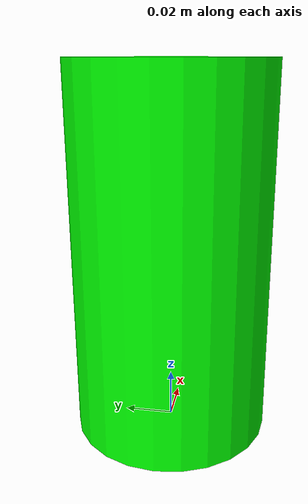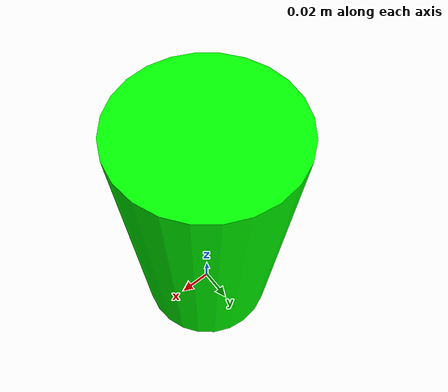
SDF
<sdf version="1.4">
  <model name="object">
    <static>0</static>
    <link name="link">
      <inertial>
        <mass>0.25</mass>
        <inertia>
          <ixx>0.000000</ixx>
          <ixy>0.000000</ixy>
          <ixz>0.000000</ixz>
          <iyy>0.000000</iyy>
          <iyz>0.000000</iyz>
          <izz>0.000000</izz>
        </inertia>
      </inertial>
      <collision name="collision">
        <pose>0 0 0.075 3.1416 0 0</pose>
        <geometry>
          <cylinder>
            <radius>0.04</radius>
            <length>0.15</length>
          </cylinder>
        </geometry>
        <surface>
          <bounce />
          <friction>
            <ode />
          </friction>
          <contact>
            <ode />
          </contact>
        </surface>
      </collision>
      <visual name="visual">
        <cast_shadows> 0 </cast_shadows>
        <pose>0 0 0.075 3.1416 0 0</pose>
        <geometry>
          <cylinder>
            <radius>0.04</radius>
            <length>0.15</length>
          </cylinder>
        </geometry>
        <material>
          <lighting> 1 </lighting>
          <ambient>0 1 0 1 </ambient>
          <diffuse>0 1 0 1</diffuse>
          <specular> 0 1 0 1</specular>
        </material>
      </visual>
      <velocity_decay>
        <linear>0.000000</linear>
        <angular>0.000000</angular>
      </velocity_decay>
      <self_collide>0</self_collide>
      <kinematic>0</kinematic>
      <gravity>1</gravity>
    </link>
  </model>
</sdf>
